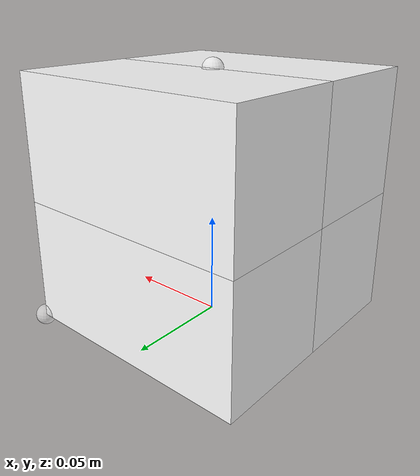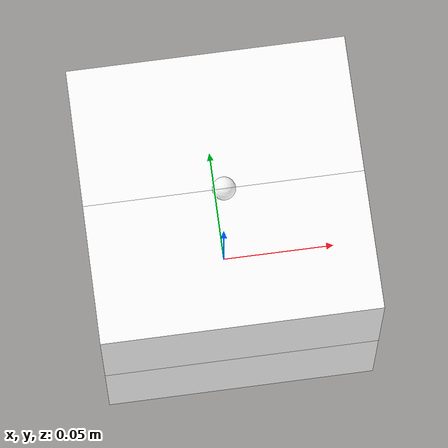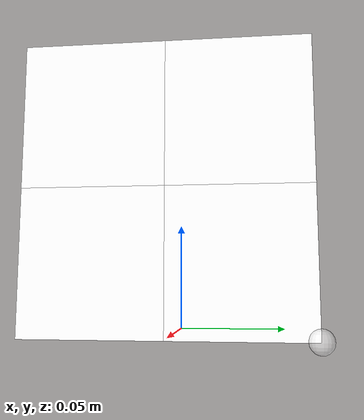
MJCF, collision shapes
<mujoco model="cardbox_b1">
  <default>
    <default class="visual">
      <geom group="1" type="mesh" contype="0" conaffinity="0" density="100"/>
    </default>
    <default class="collision">
      <geom group="0" type="mesh" density="100" solimp="0.95 0.98 0.001" solref="0.004 1" rgba="1 1 1 0.25"/>
    </default>
  </default>
  <asset>
    <texture type="2d" name="T_Cardbox_B3_Albedo" file="textures/T_Cardbox_B3_Albedo.png"/>
    <material name="Cardboard_B1" texture="T_Cardbox_B3_Albedo" specular="0.5" shininess="0.25"/>
    <mesh file="meshes/cardbox_b1.obj" name="cardbox_b1" scale="0.5 0.5 0.5"/>
  </asset>
  <worldbody>
    <body>
      <body name="object">
        <geom material="Cardboard_B1" mesh="cardbox_b1" class="visual"/>
        <geom type="box" pos="-0.00012059290044794545 0.02975183603151827 0.03017153201636713" size="0.059536590673434405 0.029826883029137745 0.030474944248944545" quat="0.00010722777790058494 0.00011960811405354825 0.0005699854852321755 0.9999998246563094" class="collision"/>
        <geom type="box" pos="-0.000106005250270140085 0.029821315559473115 0.09112137916712519" size="0.059536590673434405 0.029826883029137745 0.030474944248944545" quat="0.00010722777790058494 0.00011960811405354825 0.0005699854852321755 0.9999998246563094" class="collision"/>
        <geom type="box" pos="-0.0001333778459826801 -0.029901889893940478 0.030239537096184785" size="0.059536590673434405 0.029826883029137745 0.030474944248944545" quat="0.00010722777790058494 0.00011960811405354825 0.0005699854852321755 0.9999998246563094" class="collision"/>
        <geom type="box" pos="-0.000118790195804874735 -0.029832410365985635 0.09118938424694285" size="0.059536590673434405 0.029826883029137745 0.030474944248944545" quat="0.00010722777790058494 0.00011960811405354825 0.0005699854852321755 0.9999998246563094" class="collision"/>
      </body>
      <site name="bottom_site" pos="0 0 -0.0002015" rgba="1 1 1 0.5" size="0.005"/>
      <site name="top_site" pos="0 0 0.121606" rgba="1 1 1 0.5" size="0.005"/>
      <site name="horizontal_radius_site" pos="0.0594435 0.0596915 0" rgba="1 1 1 0.5" size="0.005"/>
    </body>
  </worldbody>
</mujoco>
